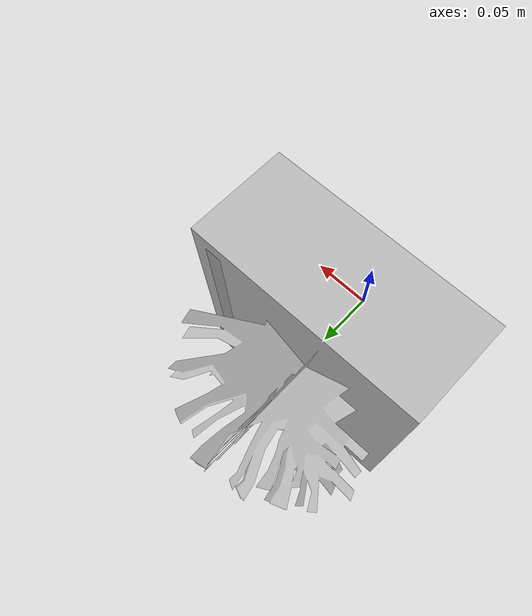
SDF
<?xml version="1.0" ?>
<sdf version="1.4">
  <model name="shelf3_plant3_2">
    <link name="body">
      <pose>0 0 0 0 0 0</pose>
      <inertial>
        <pose>  -0.002577   0.060156   0.001626 0 0 0</pose>
        <mass>0.5</mass>
        <inertia>
          <ixx>0.01</ixx>
          <ixy>0</ixy>
          <ixz>0</ixz>
          <iyy>0.01</iyy>
          <iyz>0</iyz>
          <izz>0.01</izz>
        </inertia>
      </inertial>
      <collision name="collision">
        <geometry>
          <mesh>
            <uri>model://bookshelf/shelf3_items/plant3_2/plant3_2.dae</uri>
          </mesh>
        </geometry>
      </collision>
      <visual name="visual">
        <geometry>
          <mesh>
            <uri>model://bookshelf/shelf3_items/plant3_2/plant3_2.dae</uri>
          </mesh>
        </geometry>
      </visual>
    </link>
  </model>
</sdf>
